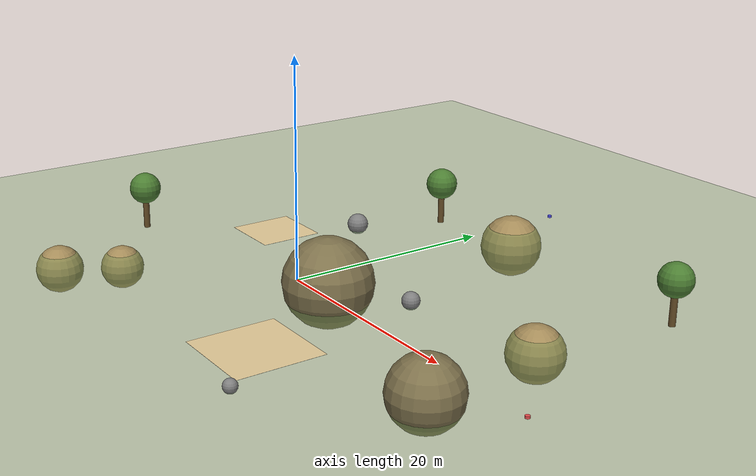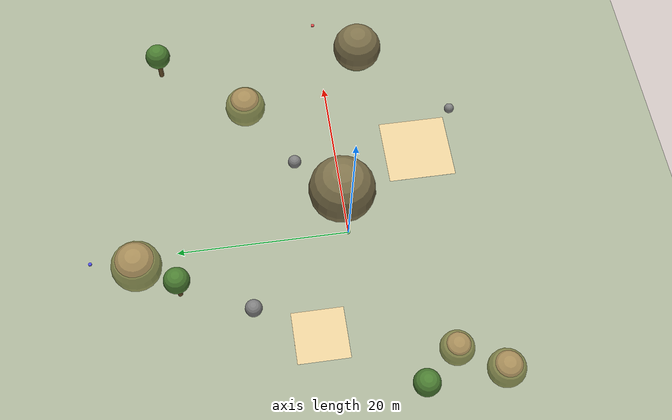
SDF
<?xml version="1.0"?>
<sdf version="1.8">
  <world name="leo_open_terrain">

    <!-- ── Physics ─────────────────────────────────────────────────── -->
    <physics name="1ms" type="ignored">
      <max_step_size>0.001</max_step_size>
      <real_time_factor>1.0</real_time_factor>
    </physics>

    <!-- ── Plugins ──────────────────────────────────────────────────── -->
    <plugin filename="ignition-gazebo-physics-system"
            name="ignition::gazebo::systems::Physics"/>
    <plugin filename="ignition-gazebo-sensors-system"
            name="ignition::gazebo::systems::Sensors">
      <render_engine>ogre2</render_engine>
    </plugin>
    <plugin filename="ignition-gazebo-scene-broadcaster-system"
            name="ignition::gazebo::systems::SceneBroadcaster"/>
    <plugin filename="ignition-gazebo-user-commands-system"
            name="ignition::gazebo::systems::UserCommands"/>
    <plugin filename="gz-sim-imu-system"
            name="gz::sim::systems::Imu"/>
    <plugin filename="ignition-gazebo-navsat-system"
            name="ignition::gazebo::systems::NavSat"/>

    <!-- ── GPS datum: Ankara ─────────────────────────────────────────── -->
    <spherical_coordinates>
      <surface_model>EARTH_WGS84</surface_model>
      <world_frame_orientation>ENU</world_frame_orientation>
      <latitude_deg>39.925018</latitude_deg>
      <longitude_deg>32.836956</longitude_deg>
      <elevation>890</elevation>
      <heading_deg>0</heading_deg>
    </spherical_coordinates>

    <!-- ── Lighting ─────────────────────────────────────────────────── -->
    <light name="sun" type="directional">
      <cast_shadows>true</cast_shadows>
      <pose>0 0 10 0 0 0</pose>
      <diffuse>0.8 0.8 0.8 1</diffuse>
      <specular>0.2 0.2 0.2 1</specular>
      <attenuation>
        <range>1000</range>
        <constant>0.9</constant>
        <linear>0.01</linear>
        <quadratic>0.001</quadratic>
      </attenuation>
      <direction>-0.5 0.1 -0.9</direction>
    </light>

    <!-- ── Ground plane (grass/soil mix) ────────────────────────────── -->
    <model name="ground_plane">
      <static>true</static>
      <link name="link">
        <collision name="collision">
          <geometry>
            <plane>
              <normal>0 0 1</normal>
              <size>200 200</size>
            </plane>
          </geometry>
          <surface>
            <friction>
              <ode><mu>0.7</mu><mu2>0.7</mu2></ode>
            </friction>
          </surface>
        </collision>
        <visual name="visual">
          <geometry>
            <plane>
              <normal>0 0 1</normal>
              <size>200 200</size>
            </plane>
          </geometry>
          <material>
            <!-- Green grass color -->
            <ambient>0.3 0.5 0.2 1</ambient>
            <diffuse>0.4 0.6 0.3 1</diffuse>
            <specular>0.05 0.05 0.04 1</specular>
          </material>
        </visual>
      </link>
    </model>

    <!-- ════════════════════════════════════════════════════════════════
         ROLLING HILLS — Various sized terrain features
         ════════════════════════════════════════════════════════════════ -->

    <!-- Large hill — north area -->
    <model name="hill_north">
      <static>true</static>
      <pose>0 25 -2.0 0 0 0</pose>
      <link name="link">
        <collision name="c">
          <geometry><sphere><radius>3.0</radius></sphere></geometry>
          <surface><friction><ode><mu>0.8</mu></ode></friction></surface>
        </collision>
        <visual name="v">
          <geometry><sphere><radius>3.0</radius></sphere></geometry>
          <material><ambient>0.55 0.45 0.3 1</ambient><diffuse>0.65 0.55 0.35 1</diffuse></material>
        </visual>
      </link>
    </model>

    <!-- Medium hill — east area -->
    <model name="hill_east">
      <static>true</static>
      <pose>20 10 -1.8 0 0 0</pose>
      <link name="link">
        <collision name="c">
          <geometry><sphere><radius>2.5</radius></sphere></geometry>
          <surface><friction><ode><mu>0.8</mu></ode></friction></surface>
        </collision>
        <visual name="v">
          <geometry><sphere><radius>2.5</radius></sphere></geometry>
          <material><ambient>0.55 0.45 0.3 1</ambient><diffuse>0.65 0.55 0.35 1</diffuse></material>
        </visual>
      </link>
    </model>

    <!-- Small hill cluster — south-west -->
    <model name="hill_sw_1">
      <static>true</static>
      <pose>-15 -10 -1.5 0 0 0</pose>
      <link name="link">
        <collision name="c">
          <geometry><sphere><radius>2.0</radius></sphere></geometry>
          <surface><friction><ode><mu>0.8</mu></ode></friction></surface>
        </collision>
        <visual name="v">
          <geometry><sphere><radius>2.0</radius></sphere></geometry>
          <material><ambient>0.55 0.45 0.3 1</ambient><diffuse>0.65 0.55 0.35 1</diffuse></material>
        </visual>
      </link>
    </model>

    <model name="hill_sw_2">
      <static>true</static>
      <pose>-18 -15 -1.6 0 0 0</pose>
      <link name="link">
        <collision name="c">
          <geometry><sphere><radius>2.2</radius></sphere></geometry>
          <surface><friction><ode><mu>0.8</mu></ode></friction></surface>
        </collision>
        <visual name="v">
          <geometry><sphere><radius>2.2</radius></sphere></geometry>
          <material><ambient>0.55 0.45 0.3 1</ambient><diffuse>0.65 0.55 0.35 1</diffuse></material>
        </visual>
      </link>
    </model>

    <!-- ════════════════════════════════════════════════════════════════
         VALLEYS — Depressions in terrain (inverted hills)
         ════════════════════════════════════════════════════════════════ -->

    <!-- Valley — central area -->
    <model name="valley_center">
      <static>true</static>
      <pose>5 0 1.5 0 0 0</pose>
      <link name="link">
        <collision name="c">
          <geometry><sphere><radius>4.0</radius></sphere></geometry>
          <surface><friction><ode><mu>0.6</mu></ode></friction></surface>
        </collision>
        <visual name="v">
          <geometry><sphere><radius>4.0</radius></sphere></geometry>
          <material><ambient>0.4 0.35 0.25 1</ambient><diffuse>0.5 0.45 0.3 1</diffuse></material>
        </visual>
      </link>
    </model>

    <!-- Small valley — east -->
    <model name="valley_east">
      <static>true</static>
      <pose>25 -5 1.2 0 0 0</pose>
      <link name="link">
        <collision name="c">
          <geometry><sphere><radius>3.0</radius></sphere></geometry>
          <surface><friction><ode><mu>0.6</mu></ode></friction></surface>
        </collision>
        <visual name="v">
          <geometry><sphere><radius>3.0</radius></sphere></geometry>
          <material><ambient>0.4 0.35 0.25 1</ambient><diffuse>0.5 0.45 0.3 1</diffuse></material>
        </visual>
      </link>
    </model>

    <!-- ════════════════════════════════════════════════════════════════
         ROCKS — Scattered obstacles for navigation testing
         ════════════════════════════════════════════════════════════════ -->

    <model name="rock_01">
      <static>true</static>
      <pose>10 5 0.4 0 0 0</pose>
      <link name="link">
        <collision name="c">
          <geometry><sphere><radius>0.8</radius></sphere></geometry>
          <surface><friction><ode><mu>0.9</mu></ode></friction></surface>
        </collision>
        <visual name="v">
          <geometry><sphere><radius>0.8</radius></sphere></geometry>
          <material><ambient>0.4 0.4 0.4 1</ambient><diffuse>0.5 0.5 0.5 1</diffuse></material>
        </visual>
      </link>
    </model>

    <model name="rock_02">
      <static>true</static>
      <pose>-8 12 0.5 0 0 0</pose>
      <link name="link">
        <collision name="c">
          <geometry><sphere><radius>1.0</radius></sphere></geometry>
          <surface><friction><ode><mu>0.9</mu></ode></friction></surface>
        </collision>
        <visual name="v">
          <geometry><sphere><radius>1.0</radius></sphere></geometry>
          <material><ambient>0.4 0.4 0.4 1</ambient><diffuse>0.5 0.5 0.5 1</diffuse></material>
        </visual>
      </link>
    </model>

    <model name="rock_03">
      <static>true</static>
      <pose>15 -15 0.3 0 0 0</pose>
      <link name="link">
        <collision name="c">
          <geometry><sphere><radius>0.6</radius></sphere></geometry>
          <surface><friction><ode><mu>0.9</mu></ode></friction></surface>
        </collision>
        <visual name="v">
          <geometry><sphere><radius>0.6</radius></sphere></geometry>
          <material><ambient>0.4 0.4 0.4 1</ambient><diffuse>0.5 0.5 0.5 1</diffuse></material>
        </visual>
      </link>
    </model>

    <!-- ════════════════════════════════════════════════════════════════
         TREES — Visual landmarks and light obstacles
         ════════════════════════════════════════════════════════════════ -->

    <model name="tree_01">
      <static>true</static>
      <pose>-5 20 1.5 0 0 0</pose>
      <link name="link">
        <collision name="c">
          <geometry><cylinder><radius>0.3</radius><length>3.0</length></cylinder></geometry>
        </collision>
        <visual name="v">
          <geometry><cylinder><radius>0.3</radius><length>3.0</length></cylinder></geometry>
          <material><ambient>0.3 0.2 0.1 1</ambient><diffuse>0.4 0.3 0.15 1</diffuse></material>
        </visual>
      </link>
      <link name="canopy">
        <pose>0 0 2.5 0 0 0</pose>
        <collision name="c">
          <geometry><sphere><radius>1.5</radius></sphere></geometry>
        </collision>
        <visual name="v">
          <geometry><sphere><radius>1.5</radius></sphere></geometry>
          <material><ambient>0.2 0.4 0.15 1</ambient><diffuse>0.3 0.5 0.2 1</diffuse></material>
        </visual>
      </link>
    </model>

    <model name="tree_02">
      <static>true</static>
      <pose>25 20 1.5 0 0 0</pose>
      <link name="link">
        <collision name="c">
          <geometry><cylinder><radius>0.3</radius><length>3.0</length></cylinder></geometry>
        </collision>
        <visual name="v">
          <geometry><cylinder><radius>0.3</radius><length>3.0</length></cylinder></geometry>
          <material><ambient>0.3 0.2 0.1 1</ambient><diffuse>0.4 0.3 0.15 1</diffuse></material>
        </visual>
      </link>
      <link name="canopy">
        <pose>0 0 2.5 0 0 0</pose>
        <collision name="c">
          <geometry><sphere><radius>1.5</radius></sphere></geometry>
        </collision>
        <visual name="v">
          <geometry><sphere><radius>1.5</radius></sphere></geometry>
          <material><ambient>0.2 0.4 0.15 1</ambient><diffuse>0.3 0.5 0.2 1</diffuse></material>
        </visual>
      </link>
    </model>

    <model name="tree_03">
      <static>true</static>
      <pose>-20 -5 1.5 0 0 0</pose>
      <link name="link">
        <collision name="c">
          <geometry><cylinder><radius>0.3</radius><length>3.0</length></cylinder></geometry>
        </collision>
        <visual name="v">
          <geometry><cylinder><radius>0.3</radius><length>3.0</length></cylinder></geometry>
          <material><ambient>0.3 0.2 0.1 1</ambient><diffuse>0.4 0.3 0.15 1</diffuse></material>
        </visual>
      </link>
      <link name="canopy">
        <pose>0 0 2.5 0 0 0</pose>
        <collision name="c">
          <geometry><sphere><radius>1.5</radius></sphere></geometry>
        </collision>
        <visual name="v">
          <geometry><sphere><radius>1.5</radius></sphere></geometry>
          <material><ambient>0.2 0.4 0.15 1</ambient><diffuse>0.3 0.5 0.2 1</diffuse></material>
        </visual>
      </link>
    </model>

    <!-- ════════════════════════════════════════════════════════════════
         SAND PATCHES — Different ground friction zones
         ════════════════════════════════════════════════════════════════ -->

    <model name="sand_patch_01">
      <static>true</static>
      <pose>10 -10 0.01 0 0 0</pose>
      <link name="link">
        <collision name="c">
          <geometry><plane><normal>0 0 1</normal><size>8 8</size></plane></geometry>
          <surface><friction><ode><mu>0.4</mu><mu2>0.4</mu2></ode></friction></surface>
        </collision>
        <visual name="v">
          <geometry><plane><normal>0 0 1</normal><size>8 8</size></plane></geometry>
          <material><ambient>0.8 0.7 0.5 1</ambient><diffuse>0.9 0.8 0.6 1</diffuse></material>
        </visual>
      </link>
    </model>

    <model name="sand_patch_02">
      <static>true</static>
      <pose>-12 5 0.01 0 0 0</pose>
      <link name="link">
        <collision name="c">
          <geometry><plane><normal>0 0 1</normal><size>6 6</size></plane></geometry>
          <surface><friction><ode><mu>0.4</mu><mu2>0.4</mu2></ode></friction></surface>
        </collision>
        <visual name="v">
          <geometry><plane><normal>0 0 1</normal><size>6 6</size></plane></geometry>
          <material><ambient>0.8 0.7 0.5 1</ambient><diffuse>0.9 0.8 0.6 1</diffuse></material>
        </visual>
      </link>
    </model>

    <!-- ════════════════════════════════════════════════════════════════
         PATH MARKERS — Visual waypoints for testing
         ════════════════════════════════════════════════════════════════ -->

    <model name="marker_start">
      <static>true</static>
      <pose>0 0 0.1 0 0 0</pose>
      <link name="link">
        <collision name="c">
          <geometry><cylinder><radius>0.2</radius><length>0.2</length></cylinder></geometry>
        </collision>
        <visual name="v">
          <geometry><cylinder><radius>0.2</radius><length>0.2</length></cylinder></geometry>
          <material><ambient>0.2 0.8 0.2 1</ambient><diffuse>0.3 0.9 0.3 1</diffuse></material>
        </visual>
      </link>
    </model>

    <model name="marker_north">
      <static>true</static>
      <pose>0 30 0.1 0 0 0</pose>
      <link name="link">
        <collision name="c">
          <geometry><cylinder><radius>0.2</radius><length>0.2</length></cylinder></geometry>
        </collision>
        <visual name="v">
          <geometry><cylinder><radius>0.2</radius><length>0.2</length></cylinder></geometry>
          <material><ambient>0.2 0.2 0.8 1</ambient><diffuse>0.3 0.3 0.9 1</diffuse></material>
        </visual>
      </link>
    </model>

    <model name="marker_east">
      <static>true</static>
      <pose>30 0 0.1 0 0 0</pose>
      <link name="link">
        <collision name="c">
          <geometry><cylinder><radius>0.2</radius><length>0.2</length></cylinder></geometry>
        </collision>
        <visual name="v">
          <geometry><cylinder><radius>0.2</radius><length>0.2</length></cylinder></geometry>
          <material><ambient>0.8 0.2 0.2 1</ambient><diffuse>0.9 0.3 0.3 1</diffuse></material>
        </visual>
      </link>
    </model>

  </world>
</sdf>
